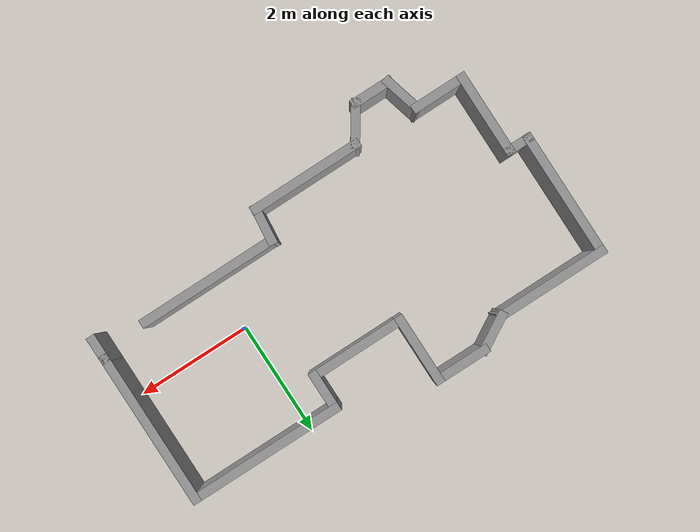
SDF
<?xml version='1.0'?>
<sdf version='1.6'>
  <model name='Test_area'>
    <pose frame=''>-1.6869 0.165833 0 0 -0 0</pose>
    <link name='Wall_0'>
      <collision name='Wall_0_Collision'>
        <geometry>
          <box>
            <size>2 0.15 2.5</size>
          </box>
        </geometry>
        <pose frame=''>0 0 1.25 0 -0 0</pose>
      </collision>
      <visual name='Wall_0_Visual'>
        <pose frame=''>0 0 1.25 0 -0 0</pose>
        <geometry>
          <box>
            <size>2 0.15 2.5</size>
          </box>
        </geometry>
        <material>
          <script>
            <uri>file://media/materials/scripts/gazebo.material</uri>
            <name>Gazebo/Grey</name>
          </script>
          <ambient>1 1 1 1</ambient>
        </material>
        <meta>
          <layer>0</layer>
        </meta>
      </visual>
      <pose frame=''>-0.465291 -1.62025 0 0 -0 0</pose>
    </link>
    <link name='Wall_1'>
      <collision name='Wall_1_Collision'>
        <geometry>
          <box>
            <size>0.693341 0.15 2.5</size>
          </box>
        </geometry>
        <pose frame=''>0 0 1.25 0 -0 0</pose>
      </collision>
      <visual name='Wall_1_Visual'>
        <pose frame=''>0 0 1.25 0 -0 0</pose>
        <geometry>
          <box>
            <size>0.693341 0.15 2.5</size>
          </box>
        </geometry>
        <material>
          <script>
            <uri>file://media/materials/scripts/gazebo.material</uri>
            <name>Gazebo/Grey</name>
          </script>
          <ambient>1 1 1 1</ambient>
        </material>
        <meta>
          <layer>0</layer>
        </meta>
      </visual>
      <pose frame=''>0.488391 -1.35009 0 0 -0 1.46502</pose>
    </link>
    <link name='Wall_10'>
      <collision name='Wall_10_Collision'>
        <geometry>
          <box>
            <size>1.25 0.15 2.5</size>
          </box>
        </geometry>
        <pose frame=''>0 0 1.25 0 -0 0</pose>
      </collision>
      <visual name='Wall_10_Visual'>
        <pose frame=''>0 0 1.25 0 -0 0</pose>
        <geometry>
          <box>
            <size>1.25 0.15 2.5</size>
          </box>
        </geometry>
        <material>
          <script>
            <uri>file://media/materials/scripts/gazebo.material</uri>
            <name>Gazebo/Grey</name>
          </script>
          <ambient>1 1 1 1</ambient>
        </material>
        <meta>
          <layer>0</layer>
        </meta>
      </visual>
      <pose frame=''>-0.490192 1.61558 0 0 -0 1.5708</pose>
    </link>
    <link name='Wall_11'>
      <collision name='Wall_11_Collision'>
        <geometry>
          <box>
            <size>1 0.15 2.5</size>
          </box>
        </geometry>
        <pose frame=''>0 0 1.25 0 -0 0</pose>
      </collision>
      <visual name='Wall_11_Visual'>
        <pose frame=''>0 0 1.25 0 -0 0</pose>
        <geometry>
          <box>
            <size>1 0.15 2.5</size>
          </box>
        </geometry>
        <material>
          <script>
            <uri>file://media/materials/scripts/gazebo.material</uri>
            <name>Gazebo/Grey</name>
          </script>
          <ambient>1 1 1 1</ambient>
        </material>
        <meta>
          <layer>0</layer>
        </meta>
      </visual>
      <pose frame=''>-0.915192 2.16558 0 0 -0 3.14159</pose>
    </link>
    <link name='Wall_12'>
      <collision name='Wall_12_Collision'>
        <geometry>
          <box>
            <size>0.75 0.15 2.5</size>
          </box>
        </geometry>
        <pose frame=''>0 0 1.25 0 -0 0</pose>
      </collision>
      <visual name='Wall_12_Visual'>
        <pose frame=''>0 0 1.25 0 -0 0</pose>
        <geometry>
          <box>
            <size>0.75 0.15 2.5</size>
          </box>
        </geometry>
        <material>
          <script>
            <uri>file://media/materials/scripts/gazebo.material</uri>
            <name>Gazebo/Grey</name>
          </script>
          <ambient>1 1 1 1</ambient>
        </material>
        <meta>
          <layer>0</layer>
        </meta>
      </visual>
      <pose frame=''>-1.6 2.01558 0 0 -0 -2.61799</pose>
    </link>
    <link name='Wall_13'>
      <collision name='Wall_13_Collision'>
        <geometry>
          <box>
            <size>2 0.15 2.5</size>
          </box>
        </geometry>
        <pose frame=''>0 0 1.25 0 -0 0</pose>
      </collision>
      <visual name='Wall_13_Visual'>
        <pose frame=''>0 0 1.25 0 -0 0</pose>
        <geometry>
          <box>
            <size>2 0.15 2.5</size>
          </box>
        </geometry>
        <material>
          <script>
            <uri>file://media/materials/scripts/gazebo.material</uri>
            <name>Gazebo/Grey</name>
          </script>
          <ambient>1 1 1 1</ambient>
        </material>
        <meta>
          <layer>0</layer>
        </meta>
      </visual>
      <pose frame=''>-2.78481 1.86558 0 0 -0 3.14159</pose>
    </link>
    <link name='Wall_14'>
      <collision name='Wall_14_Collision'>
        <geometry>
          <box>
            <size>2.25 0.15 2.5</size>
          </box>
        </geometry>
        <pose frame=''>0 0 1.25 0 -0 0</pose>
      </collision>
      <visual name='Wall_14_Visual'>
        <pose frame=''>0 0 1.25 0 -0 0</pose>
        <geometry>
          <box>
            <size>2.25 0.15 2.5</size>
          </box>
        </geometry>
        <material>
          <script>
            <uri>file://media/materials/scripts/gazebo.material</uri>
            <name>Gazebo/Grey</name>
          </script>
          <ambient>1 1 1 1</ambient>
        </material>
        <meta>
          <layer>0</layer>
        </meta>
      </visual>
      <pose frame=''>-3.70981 0.815578 0 0 -0 -1.5708</pose>
    </link>
    <link name='Wall_15'>
      <collision name='Wall_15_Collision'>
        <geometry>
          <box>
            <size>0.5 0.15 2.5</size>
          </box>
        </geometry>
        <pose frame=''>0 0 1.25 0 -0 0</pose>
      </collision>
      <visual name='Wall_15_Visual'>
        <pose frame=''>0 0 1.25 0 -0 0</pose>
        <geometry>
          <box>
            <size>0.5 0.15 2.5</size>
          </box>
        </geometry>
        <material>
          <script>
            <uri>file://media/materials/scripts/gazebo.material</uri>
            <name>Gazebo/Grey</name>
          </script>
          <ambient>1 1 1 1</ambient>
        </material>
        <meta>
          <layer>0</layer>
        </meta>
      </visual>
      <pose frame=''>-3.53481 -0.234422 0 0 -0 0</pose>
    </link>
    <link name='Wall_16'>
      <collision name='Wall_16_Collision'>
        <geometry>
          <box>
            <size>1.5 0.15 2.5</size>
          </box>
        </geometry>
        <pose frame=''>0 0 1.25 0 -0 0</pose>
      </collision>
      <visual name='Wall_16_Visual'>
        <pose frame=''>0 0 1.25 0 -0 0</pose>
        <geometry>
          <box>
            <size>1.5 0.15 2.5</size>
          </box>
        </geometry>
        <material>
          <script>
            <uri>file://media/materials/scripts/gazebo.material</uri>
            <name>Gazebo/Grey</name>
          </script>
          <ambient>1 1 1 1</ambient>
        </material>
        <meta>
          <layer>0</layer>
        </meta>
      </visual>
      <pose frame=''>-3.35981 -0.909422 0 0 -0 -1.5708</pose>
    </link>
    <link name='Wall_17'>
      <collision name='Wall_17_Collision'>
        <geometry>
          <box>
            <size>1 0.15 2.5</size>
          </box>
        </geometry>
        <pose frame=''>0 0 1.25 0 -0 0</pose>
      </collision>
      <visual name='Wall_17_Visual'>
        <pose frame=''>0 0 1.25 0 -0 0</pose>
        <geometry>
          <box>
            <size>1 0.15 2.5</size>
          </box>
        </geometry>
        <material>
          <script>
            <uri>file://media/materials/scripts/gazebo.material</uri>
            <name>Gazebo/Grey</name>
          </script>
          <ambient>1 1 1 1</ambient>
        </material>
        <meta>
          <layer>0</layer>
        </meta>
      </visual>
      <pose frame=''>-2.93481 -1.58442 0 0 -0 0</pose>
    </link>
    <link name='Wall_18'>
      <collision name='Wall_18_Collision'>
        <geometry>
          <box>
            <size>0.75 0.15 2.5</size>
          </box>
        </geometry>
        <pose frame=''>0 0 1.25 0 -0 0</pose>
      </collision>
      <visual name='Wall_18_Visual'>
        <pose frame=''>0 0 1.25 0 -0 0</pose>
        <geometry>
          <box>
            <size>0.75 0.15 2.5</size>
          </box>
        </geometry>
        <material>
          <script>
            <uri>file://media/materials/scripts/gazebo.material</uri>
            <name>Gazebo/Grey</name>
          </script>
          <ambient>1 1 1 1</ambient>
        </material>
        <meta>
          <layer>0</layer>
        </meta>
      </visual>
      <pose frame=''>-2.43216 -1.8742 0 0 -0 -1.309</pose>
    </link>
    <link name='Wall_2'>
      <collision name='Wall_2_Collision'>
        <geometry>
          <box>
            <size>2.5 0.15 2.5</size>
          </box>
        </geometry>
        <pose frame=''>0 0 1.25 0 -0 0</pose>
      </collision>
      <visual name='Wall_2_Visual'>
        <pose frame=''>0 0 1.25 0 -0 0</pose>
        <geometry>
          <box>
            <size>2.5 0.15 2.5</size>
          </box>
        </geometry>
        <material>
          <script>
            <uri>file://media/materials/scripts/gazebo.material</uri>
            <name>Gazebo/Grey</name>
          </script>
          <ambient>1 1 1 1</ambient>
        </material>
        <meta>
          <layer>0</layer>
        </meta>
      </visual>
      <pose frame=''>1.69207 -1.07994 0 0 -0 0</pose>
    </link>
    <link name='Wall_20'>
      <collision name='Wall_20_Collision'>
        <geometry>
          <box>
            <size>0.75 0.15 2.5</size>
          </box>
        </geometry>
        <pose frame=''>0 0 1.25 0 -0 0</pose>
      </collision>
      <visual name='Wall_20_Visual'>
        <pose frame=''>0 0 1.25 0 -0 0</pose>
        <geometry>
          <box>
            <size>0.75 0.15 2.5</size>
          </box>
        </geometry>
        <material>
          <script>
            <uri>file://media/materials/scripts/gazebo.material</uri>
            <name>Gazebo/Grey</name>
          </script>
          <ambient>1 1 1 1</ambient>
        </material>
        <meta>
          <layer>0</layer>
        </meta>
      </visual>
      <pose frame=''>-2.05452 -2.16398 0 0 -0 0</pose>
    </link>
    <link name='Wall_21'>
      <collision name='Wall_21_Collision'>
        <geometry>
          <box>
            <size>0.80445 0.15 2.5</size>
          </box>
        </geometry>
        <pose frame=''>0 0 1.25 0 -0 0</pose>
      </collision>
      <visual name='Wall_21_Visual'>
        <pose frame=''>0 0 1.25 0 -0 0</pose>
        <geometry>
          <box>
            <size>0.80445 0.15 2.5</size>
          </box>
        </geometry>
        <material>
          <script>
            <uri>file://media/materials/scripts/gazebo.material</uri>
            <name>Gazebo/Grey</name>
          </script>
          <ambient>1 1 1 1</ambient>
        </material>
        <meta>
          <layer>0</layer>
        </meta>
      </visual>
      <pose frame=''>-1.5724 -1.89211 0 0 -0 0.980585</pose>
    </link>
    <link name='Wall_4'>
      <collision name='Wall_4_Collision'>
        <geometry>
          <box>
            <size>0.5 0.15 2.5</size>
          </box>
        </geometry>
        <pose frame=''>0 0 1.25 0 -0 0</pose>
      </collision>
      <visual name='Wall_4_Visual'>
        <pose frame=''>0 0 1.25 0 -0 0</pose>
        <geometry>
          <box>
            <size>0.5 0.15 2.5</size>
          </box>
        </geometry>
        <material>
          <script>
            <uri>file://media/materials/scripts/gazebo.material</uri>
            <name>Gazebo/Grey</name>
          </script>
          <ambient>1 1 1 1</ambient>
        </material>
        <meta>
          <layer>0</layer>
        </meta>
      </visual>
      <pose frame=''>3.70981 -1.10942 0 0 -0 1.5708</pose>
    </link>
    <link name='Wall_5'>
      <collision name='Wall_5_Collision'>
        <geometry>
          <box>
            <size>2.75 0.15 2.5</size>
          </box>
        </geometry>
        <pose frame=''>0 0 1.25 0 -0 0</pose>
      </collision>
      <visual name='Wall_5_Visual'>
        <pose frame=''>0 0 1.25 0 -0 0</pose>
        <geometry>
          <box>
            <size>2.75 0.15 2.5</size>
          </box>
        </geometry>
        <material>
          <script>
            <uri>file://media/materials/scripts/gazebo.material</uri>
            <name>Gazebo/Grey</name>
          </script>
          <ambient>1 1 1 1</ambient>
        </material>
        <meta>
          <layer>0</layer>
        </meta>
      </visual>
      <pose frame=''>3.70981 0.365578 0 0 -0 1.5708</pose>
    </link>
    <link name='Wall_6'>
      <collision name='Wall_6_Collision'>
        <geometry>
          <box>
            <size>2.75 0.15 2.5</size>
          </box>
        </geometry>
        <pose frame=''>0 0 1.25 0 -0 0</pose>
      </collision>
      <visual name='Wall_6_Visual'>
        <pose frame=''>0 0 1.25 0 -0 0</pose>
        <geometry>
          <box>
            <size>2.75 0.15 2.5</size>
          </box>
        </geometry>
        <material>
          <script>
            <uri>file://media/materials/scripts/gazebo.material</uri>
            <name>Gazebo/Grey</name>
          </script>
          <ambient>1 1 1 1</ambient>
        </material>
        <meta>
          <layer>0</layer>
        </meta>
      </visual>
      <pose frame=''>2.40981 1.66558 0 0 -0 3.14159</pose>
    </link>
    <link name='Wall_8'>
      <collision name='Wall_8_Collision'>
        <geometry>
          <box>
            <size>0.75 0.15 2.5</size>
          </box>
        </geometry>
        <pose frame=''>0 0 1.25 0 -0 0</pose>
      </collision>
      <visual name='Wall_8_Visual'>
        <pose frame=''>0 0 1.25 0 -0 0</pose>
        <geometry>
          <box>
            <size>0.75 0.15 2.5</size>
          </box>
        </geometry>
        <material>
          <script>
            <uri>file://media/materials/scripts/gazebo.material</uri>
            <name>Gazebo/Grey</name>
          </script>
          <ambient>1 1 1 1</ambient>
        </material>
        <meta>
          <layer>0</layer>
        </meta>
      </visual>
      <pose frame=''>1.10981 1.36558 0 0 -0 -1.5708</pose>
    </link>
    <link name='Wall_9'>
      <collision name='Wall_9_Collision'>
        <geometry>
          <box>
            <size>1.75 0.15 2.5</size>
          </box>
        </geometry>
        <pose frame=''>0 0 1.25 0 -0 0</pose>
      </collision>
      <visual name='Wall_9_Visual'>
        <pose frame=''>0 0 1.25 0 -0 0</pose>
        <geometry>
          <box>
            <size>1.75 0.15 2.5</size>
          </box>
        </geometry>
        <material>
          <script>
            <uri>file://media/materials/scripts/gazebo.material</uri>
            <name>Gazebo/Grey</name>
          </script>
          <ambient>1 1 1 1</ambient>
        </material>
        <meta>
          <layer>0</layer>
        </meta>
      </visual>
      <pose frame=''>0.309808 1.06558 0 0 -0 3.14159</pose>
    </link>
    <static>1</static>
  </model>
</sdf>
